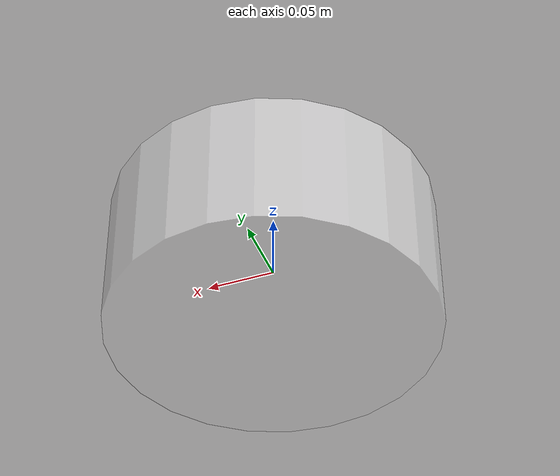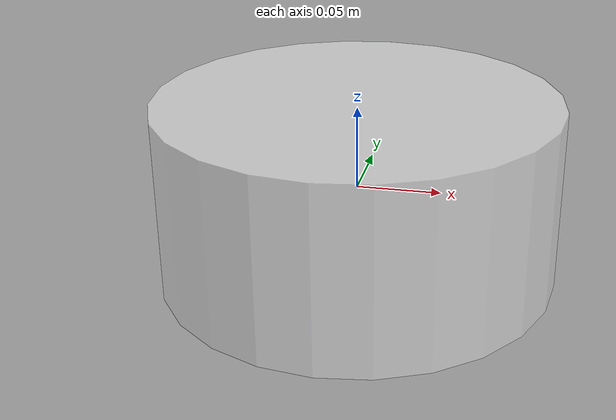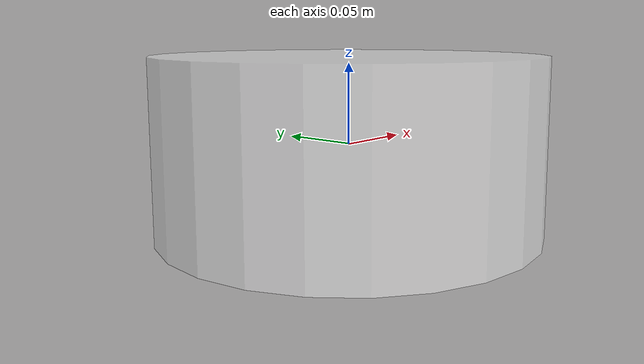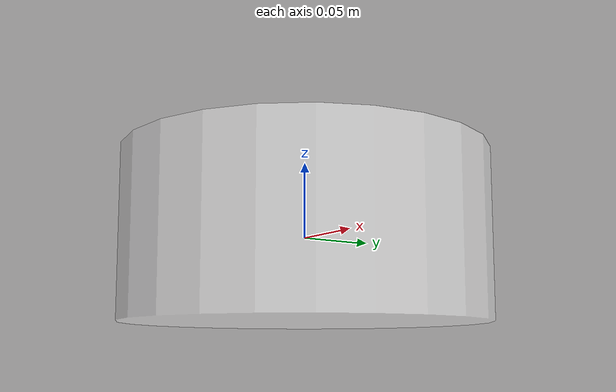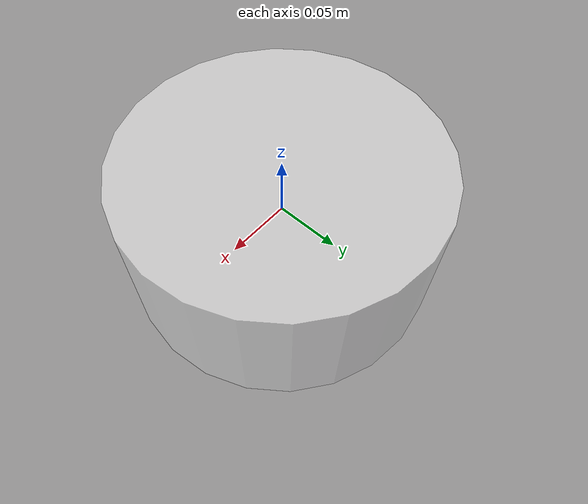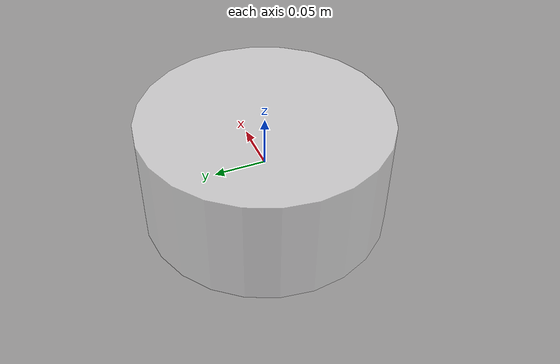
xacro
<?xml version="1.0"?>
<robot xmlns:xacro="http://www.ros.org/wiki/xacro" name="first_robot">
    <xacro:macro name="base_link" params="radius length">
        <!-- 机器人身体部分 -->
        <link name="base_link">
            <!-- 部件外观 -->
            <visual>
                <!-- 沿着自己几何中心的偏移旋转量 -->
                <origin xyz="0.0 0.0 0.0" rpy="0.0 0.0 0.0"/>
                <!-- 几何形状 -->
                <geometry>
                    <!-- 圆柱体 -->
                    <cylinder radius="${radius}" length="${length}"/>
                </geometry>
                <!-- 材质 -->
                <material name="white">
                    <color rgba="1.0 1.0 1.0 0.5"/>
                </material>
            </visual>
        </link>
    </xacro:macro>

    <xacro:macro name="imu_link" params="imu_name xyz" >
        <!-- 机器人IMU部件 -->
        <link name="${imu_name}_link">
            <!-- 部件外观 -->
            <visual>
                <!-- 沿着自己几何中心的偏移旋转量 -->
                <origin xyz="0.0 0.0 0.0" rpy="0.0 0.0 0.0"/>
                <!-- 几何形状 -->
                <geometry>
                    <box size="0.02 0.02 0.02"/>
                </geometry>
                <!-- 材质 -->
                <material name="black">
                    <color rgba="0.0 0.0 0.0 0.5"/>
                </material>
            </visual>
        </link>

        <!-- 机器人关节，用于组合机器人部件 -->
        <joint name="${imu_name}_joint" type="fixed">
            <origin xyz="${xyz}" rpy="0.0 0.0 0.0"/>
            <parent link="base_link"/>
            <child link="${imu_name}_link"/>
        </joint>
    </xacro:macro>

    <xacro:base_link radius="0.12" length="0.11"/>
    <xacro:imu_link imu_name="imu_up" xyz="0.0 0.0 0.03"/>
    <xacro:imu_link imu_name="imu_down" xyz="0.0 0.0 -0.03"/>

</robot>
